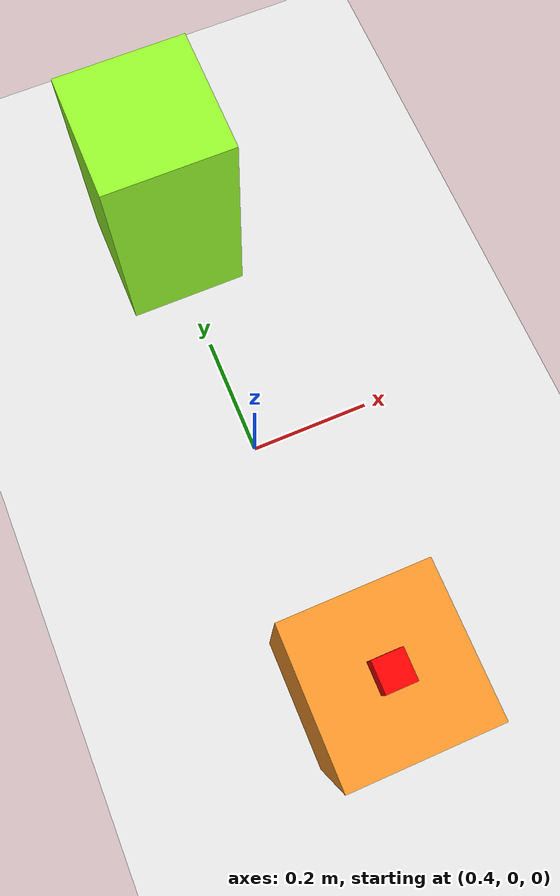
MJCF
<?xml version="1.0"?>
<mujoco model="panda scene">
    <statistic center="0.3 0 0.4" extent="1.5"/>

    <option cone="elliptic" impratio="10" noslip_iterations="20" timestep="0.001" integrator="implicitfast">
        <flag multiccd="enable"/>
    </option>

    <default>
        <geom friction="0.8 0.1 0.1" solimp="0.95 0.99 0.0001" solref="0.005 1"/>
        <default class="cube">
            <geom size="0.02 0.02 0.02" type="box" mass="0.01"/>
        </default>
    </default>

    <visual>
        <headlight diffuse="0 0 0" ambient="1 1 1"/>
        <rgba fog="1.0 1.0 1.0 1.0"/>
        <global azimuth="180" elevation="-20"/>
    </visual>

    <asset>
        <material name="groundplane" rgba="0.9 0.9 0.9 1"/>
    </asset>

    <worldbody>
        <light pos="0 0 3" diffuse="1 1 1" castshadow="false" directional="true" intensity="2"/>
        <light pos="3 -4 3" dir="-3 4 -3" diffuse="1 1 1" directional="false" intensity="30"/>

        <geom name="floor" size="5 5 0.1" type="plane" material="groundplane"/>

        <body name="source_base" pos="0.4 -0.4 0.2">
            <freejoint/>
            <geom type="box" size=".1 .1 .2" rgba=".98 .59 .17 1" mass="0.1"/>
        </body>

        <body name="target_base" pos="0.4 0.4 0.2">
            <freejoint/>
            <geom type="box" size=".1 .1 .2" rgba=".59 .98 .17 1" mass="0.1"/>
        </body>

        <body name="cube" pos="0.4 -0.4 0.42" quat="0 1 0 0">
            <freejoint/>
            <geom class="cube" rgba="1 0 0 1"/>
        </body>
    </worldbody>
</mujoco>
